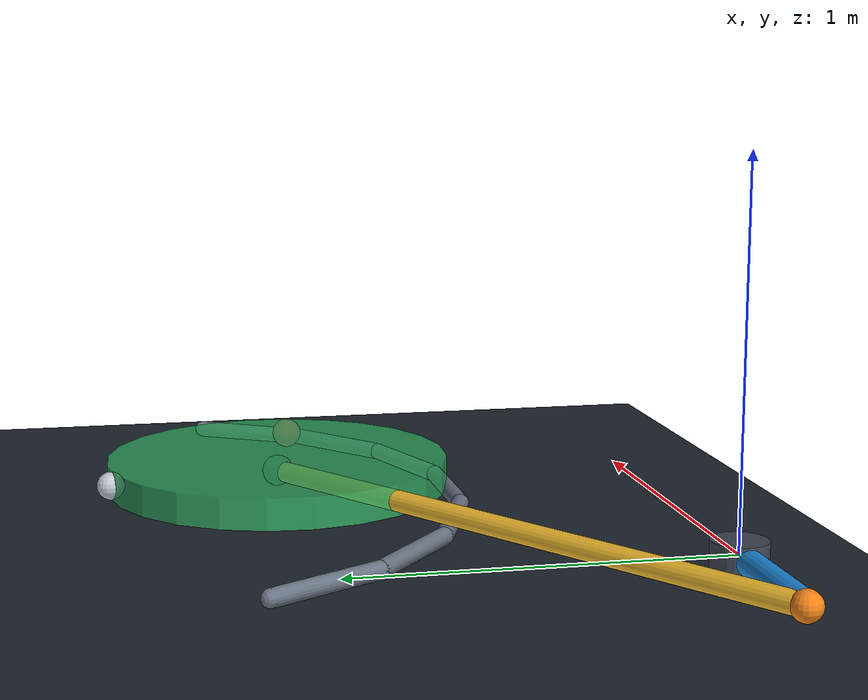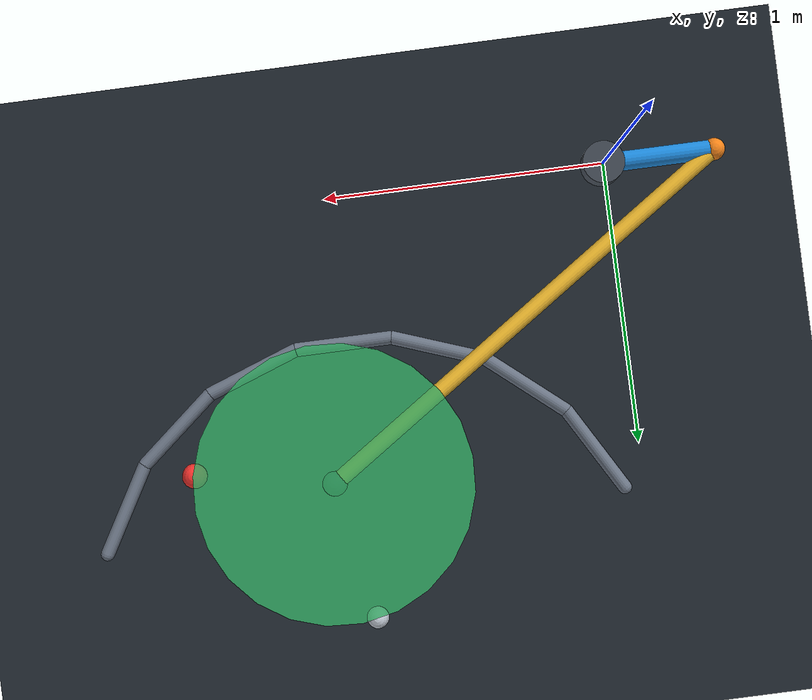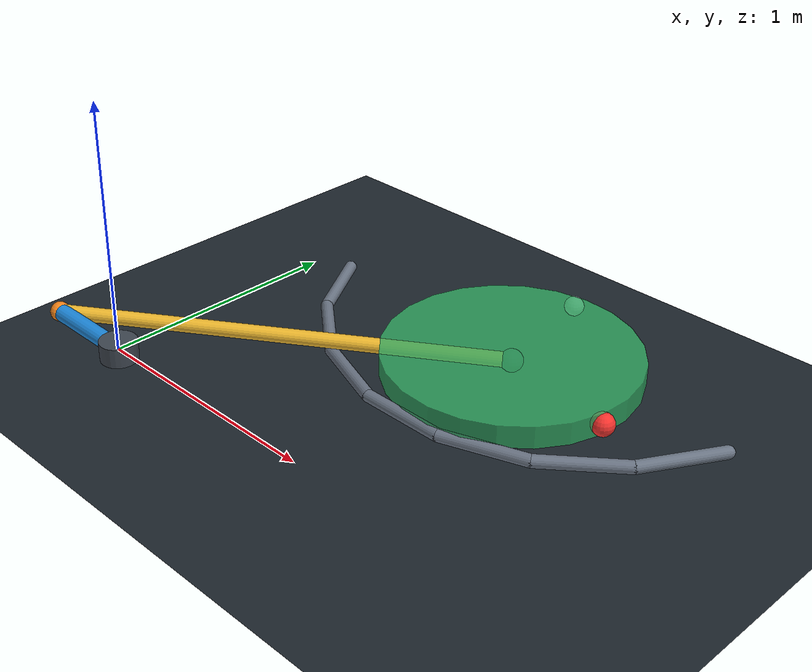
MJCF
<mujoco model="rolling_disk_points_bc">
  <compiler angle="radian" inertiafromgeom="true"/>
  <option gravity="0 0 0" timestep="0.001" integrator="implicitfast" iterations="100" tolerance="1e-10"/>
  <statistic center="1 0.75 0" extent="1.45"/>
  <visual>
    <global azimuth="90" elevation="-90"/>
    <scale jointlength="0.12" jointwidth="0.025"/>
  </visual>
  <default>
    <joint armature="0.02" damping="0" frictionloss="0"/>
    <geom contype="0" conaffinity="0" condim="1"/>
  </default>

  <worldbody>
    <light name="key_light" pos="1 -2.5 4" dir="0 0 -1"/>
    <geom name="ground" type="plane" size="1.7 1.35 0.02" pos="1 0.75 -0.13" rgba="0.12 0.15 0.18 1"/>

    <geom name="track_1" type="capsule" fromto="0.060307 1.157980 -0.055 0.233956 0.857212 -0.055" size="0.025" rgba="0.42 0.46 0.52 1"/>
    <geom name="track_2" type="capsule" fromto="0.233956 0.857212 -0.055 0.500000 0.633975 -0.055" size="0.025" rgba="0.42 0.46 0.52 1"/>
    <geom name="track_3" type="capsule" fromto="0.500000 0.633975 -0.055 0.826352 0.515192 -0.055" size="0.025" rgba="0.42 0.46 0.52 1"/>
    <geom name="track_4" type="capsule" fromto="0.826352 0.515192 -0.055 1.173648 0.515192 -0.055" size="0.025" rgba="0.42 0.46 0.52 1"/>
    <geom name="track_5" type="capsule" fromto="1.173648 0.515192 -0.055 1.500000 0.633975 -0.055" size="0.025" rgba="0.42 0.46 0.52 1"/>
    <geom name="track_6" type="capsule" fromto="1.500000 0.633975 -0.055 1.766044 0.857212 -0.055" size="0.025" rgba="0.42 0.46 0.52 1"/>
    <geom name="track_7" type="capsule" fromto="1.766044 0.857212 -0.055 1.939693 1.157980 -0.055" size="0.025" rgba="0.42 0.46 0.52 1"/>
    <site name="arc_center_o1" pos="1 1.5 0" size="0.04" rgba="0.75 0.78 0.82 1"/>
    <geom name="pivot_o" type="cylinder" size="0.075 0.04" pos="0 0 0" rgba="0.25 0.28 0.32 1"/>

    <body name="crank" pos="0 0 0">
      <joint name="crank_hinge" type="hinge" axis="0 0 1" limited="false"/>
      <geom name="crank_geom" type="capsule" fromto="0 0 0 -0.4 0 0" size="0.035" mass="0.01" rgba="0.12 0.55 0.88 1"/>
      <site name="point_a" pos="-0.4 0 0" size="0.04" rgba="0.96 0.52 0.10 1"/>
      <body name="connecting_rod" pos="-0.4 0 0" quat="0.956127032317956 0 0 0.292952381917024">
        <joint name="rod_hinge_a" type="hinge" axis="0 0 1" limited="false"/>
        <geom name="rod_geom" type="capsule" fromto="0 0 0 1.8 0 0" size="0.03" mass="0.005" rgba="0.93 0.72 0.18 1"/>
        <site name="rod_end_b" pos="1.8 0 0" size="0.04" rgba="0.96 0.52 0.10 1"/>
      </body>
    </body>

    <body name="disk_carrier" pos="1 1.5 0" quat="0.995811784667121 0 0 0.0914269627521484">
      <joint name="disk_orbit" type="hinge" axis="0 0 1" limited="false"/>
      <geom name="carrier_inertia" type="sphere" size="0.01" mass="0.001" rgba="0 0 0 0"/>
      <body name="disk" pos="0 -0.5 0" quat="0.983282220963835 0 0 -0.182088093889823">
        <joint name="disk_spin" type="hinge" axis="0 0 1" limited="false"/>
        <geom name="disk_geom" type="cylinder" size="0.5 0.045" mass="1.0" rgba="0.22 0.72 0.42 0.82"/>
        <site name="point_b" pos="0 0 0" size="0.045" rgba="0.10 0.15 0.20 1"/>
        <site name="point_c" pos="0.5 0 0" size="0.045" rgba="0.96 0.20 0.18 1"/>
      </body>
    </body>
  </worldbody>

  <equality>
    <connect name="pin_b" body1="connecting_rod" body2="disk" anchor="1.8 0 0" solref="0.02 1" solimp="0.999 0.9999 0.001"/>
    <joint name="pure_rolling" joint1="disk_spin" joint2="disk_orbit" polycoef="0 -2 0 0 0" solref="0.02 1" solimp="0.999 0.9999 0.001"/>
  </equality>

  <actuator>
    <velocity name="crank_speed" joint="crank_hinge" kv="200" ctrlrange="-5 5" ctrllimited="true"/>
  </actuator>
</mujoco>
